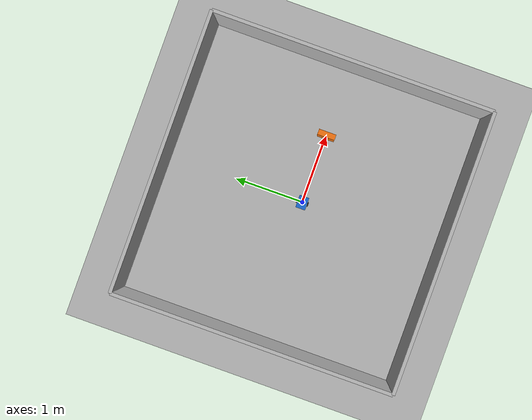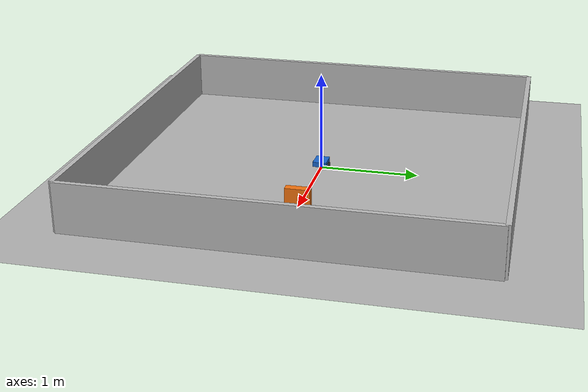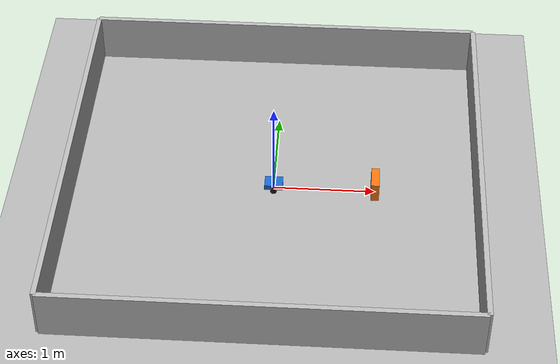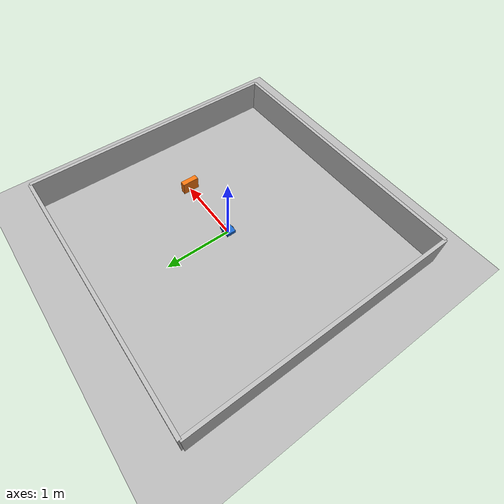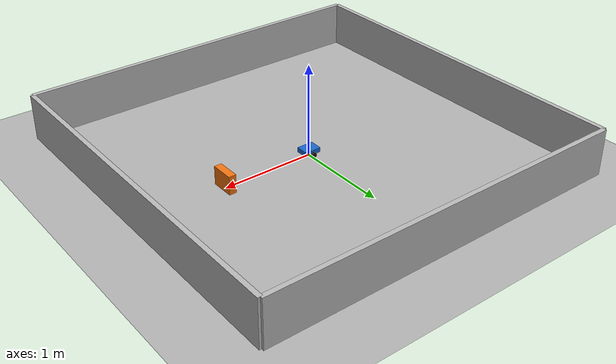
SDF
<?xml version="1.0"?>
<sdf version="1.10">
  <world name="rover_world">
    <plugin filename="gz-sim-physics-system" name="gz::sim::systems::Physics"/>
    <plugin filename="gz-sim-user-commands-system" name="gz::sim::systems::UserCommands"/>
    <plugin filename="gz-sim-scene-broadcaster-system" name="gz::sim::systems::SceneBroadcaster"/>
    <plugin filename="gz-sim-sensors-system" name="gz::sim::systems::Sensors"><render_engine>ogre2</render_engine></plugin>
    <gravity>0 0 -9.8</gravity>
    <light name="sun" type="directional"><pose>0 0 10 0 0 0</pose><diffuse>0.8 0.8 0.8 1</diffuse><specular>0.2 0.2 0.2 1</specular><direction>-0.3 0.2 -1</direction></light>
    <model name="ground"><static>true</static><link name="ground_link"><collision name="collision"><geometry><plane><normal>0 0 1</normal><size>10 10</size></plane></geometry></collision><visual name="visual"><geometry><plane><normal>0 0 1</normal><size>10 10</size></plane></geometry><material><diffuse>0.7 0.7 0.7 1</diffuse></material></visual></link></model>
    <model name="dock"><static>true</static><pose>1.0 0 0.10 0 0 0</pose><link name="body"><collision name="collision"><geometry><box><size>0.08 0.25 0.20</size></box></geometry></collision><visual name="visual"><geometry><box><size>0.08 0.25 0.20</size></box></geometry><material><diffuse>0.95 0.45 0.06 1</diffuse></material></visual></link></model>
    <model name="wall_north"><static>true</static><pose>0 2 0.25 0 0 0</pose><link name="body"><collision name="collision"><geometry><box><size>4 0.05 0.5</size></box></geometry></collision><visual name="visual"><geometry><box><size>4 0.05 0.5</size></box></geometry></visual></link></model>
    <model name="wall_south"><static>true</static><pose>0 -2 0.25 0 0 0</pose><link name="body"><collision name="collision"><geometry><box><size>4 0.05 0.5</size></box></geometry></collision><visual name="visual"><geometry><box><size>4 0.05 0.5</size></box></geometry></visual></link></model>
    <model name="wall_west"><static>true</static><pose>-2 0 0.25 0 0 0</pose><link name="body"><collision name="collision"><geometry><box><size>0.05 4 0.5</size></box></geometry></collision><visual name="visual"><geometry><box><size>0.05 4 0.5</size></box></geometry></visual></link></model>
    <model name="wall_east"><static>true</static><pose>2 0 0.25 0 0 0</pose><link name="body"><collision name="collision"><geometry><box><size>0.05 4 0.5</size></box></geometry></collision><visual name="visual"><geometry><box><size>0.05 4 0.5</size></box></geometry></visual></link></model>
    <model name="minibot">
      <pose>0 0 0.0625 0 0 0</pose>
      <link name="base_link">
        <inertial><mass>0.8</mass><inertia><ixx>0.003</ixx><iyy>0.004</iyy><izz>0.006</izz></inertia></inertial>
        <collision name="base_collision"><geometry><box><size>0.18 0.14 0.05</size></box></geometry></collision>
        <visual name="base_visual"><geometry><box><size>0.18 0.14 0.05</size></box></geometry><material><diffuse>0.1 0.4 0.8 1</diffuse></material></visual>
        <collision name="caster_collision"><pose>-0.065 0 -0.0375 0 0 0</pose><geometry><sphere><radius>0.02</radius></sphere></geometry><surface><friction><ode><mu>0.05</mu><mu2>0.05</mu2></ode></friction></surface></collision>
        <visual name="caster_visual"><pose>-0.065 0 -0.0375 0 0 0</pose><geometry><sphere><radius>0.02</radius></sphere></geometry></visual>
        <sensor name="lidar" type="gpu_lidar">
          <pose>0 0 0.09 0 0 0</pose><always_on>true</always_on><update_rate>8</update_rate>
          <topic>/scan</topic><gz_frame_id>laser_frame</gz_frame_id>
          <lidar><scan><horizontal><samples>360</samples><resolution>1</resolution><min_angle>-3.14159</min_angle><max_angle>3.14159</max_angle></horizontal></scan><range><min>0.15</min><max>8.0</max><resolution>0.01</resolution></range></lidar>
        </sensor>
        <sensor name="front_camera" type="camera">
          <pose>0.09 0 0.08 0 0 0</pose><always_on>true</always_on><update_rate>10</update_rate>
          <topic>/camera/image_raw</topic><gz_frame_id>camera_optical_frame</gz_frame_id>
          <camera><horizontal_fov>1.1</horizontal_fov><image><width>640</width><height>480</height><format>R8G8B8</format></image><clip><near>0.05</near><far>10</far></clip><camera_info_topic>/camera/camera_info</camera_info_topic></camera>
        </sensor>
      </link>
      <link name="left_wheel"><pose>0 0.08 -0.03 -1.57079632679 0 0</pose><inertial><mass>0.08</mass><inertia><ixx>0.00006</ixx><iyy>0.00006</iyy><izz>0.00006</izz></inertia></inertial><collision name="collision"><geometry><cylinder><radius>0.0325</radius><length>0.015</length></cylinder></geometry><surface><friction><ode><mu>1.0</mu><mu2>1.0</mu2></ode></friction></surface></collision><visual name="visual"><geometry><cylinder><radius>0.0325</radius><length>0.015</length></cylinder></geometry><material><diffuse>0.08 0.08 0.08 1</diffuse></material></visual></link>
      <link name="right_wheel"><pose>0 -0.08 -0.03 1.57079632679 0 0</pose><inertial><mass>0.08</mass><inertia><ixx>0.00006</ixx><iyy>0.00006</iyy><izz>0.00006</izz></inertia></inertial><collision name="collision"><geometry><cylinder><radius>0.0325</radius><length>0.015</length></cylinder></geometry><surface><friction><ode><mu>1.0</mu><mu2>1.0</mu2></ode></friction></surface></collision><visual name="visual"><geometry><cylinder><radius>0.0325</radius><length>0.015</length></cylinder></geometry><material><diffuse>0.08 0.08 0.08 1</diffuse></material></visual></link>
      <joint name="left_wheel_joint" type="revolute"><parent>base_link</parent><child>left_wheel</child><axis><xyz expressed_in="__model__">0 1 0</xyz><limit><lower>-1e16</lower><upper>1e16</upper></limit></axis></joint>
      <joint name="right_wheel_joint" type="revolute"><parent>base_link</parent><child>right_wheel</child><axis><xyz expressed_in="__model__">0 1 0</xyz><limit><lower>-1e16</lower><upper>1e16</upper></limit></axis></joint>
      <plugin filename="gz-sim-diff-drive-system" name="gz::sim::systems::DiffDrive">
        <left_joint>left_wheel_joint</left_joint><right_joint>right_wheel_joint</right_joint>
        <wheel_separation>0.16</wheel_separation><wheel_radius>0.0325</wheel_radius>
        <topic>/cmd_vel</topic><odom_topic>/odom</odom_topic>
        <tf_topic>/tf</tf_topic>
        <frame_id>odom</frame_id><child_frame_id>base_link</child_frame_id>
        <max_linear_velocity>0.25</max_linear_velocity><max_angular_velocity>1.5</max_angular_velocity>
        <cmd_vel_timeout>0.5</cmd_vel_timeout>
      </plugin>
    </model>
  </world>
</sdf>
